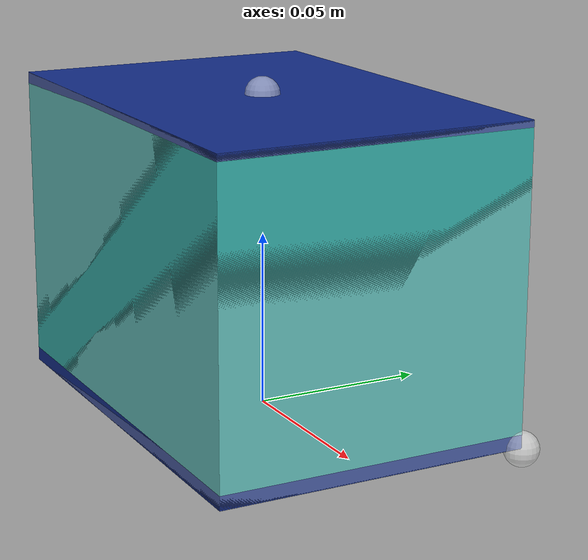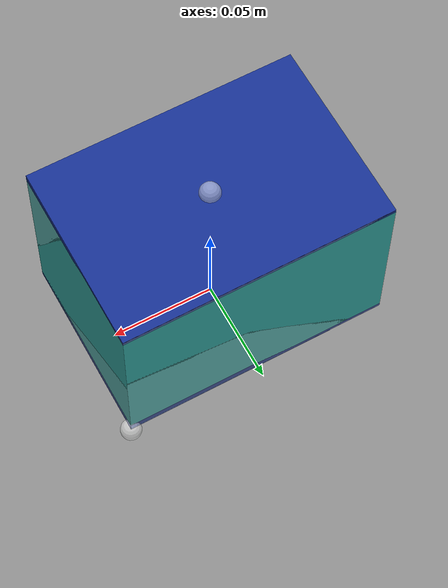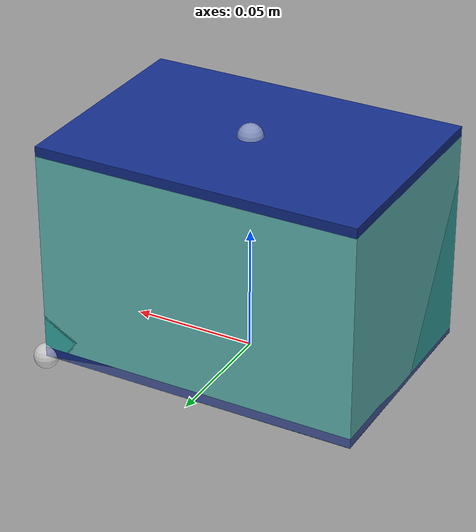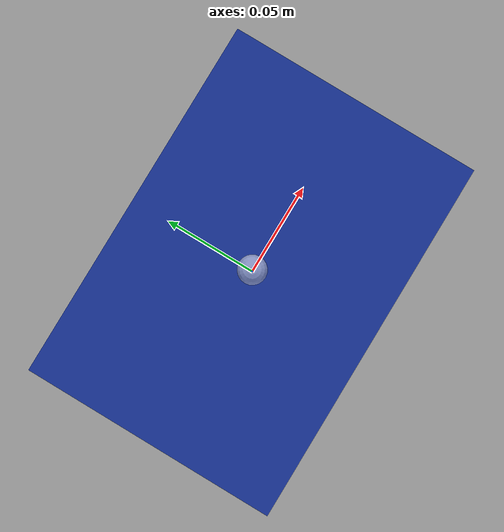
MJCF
<mujoco model="tp_link_box">
  <default>
    <default class="visual">
      <geom group="1" contype="0" conaffinity="0" density="0"/>
    </default>
    <default class="collision">
      <geom group="0" density="500" solimp="0.95 0.98 0.001" solref="0.004 1" rgba="1 1 1 0.25"/>
    </default>
    <default class="spawn">
      <geom group="1" rgba="1 1 1 0" contype="0" conaffinity="0" density="0" mass="0"/>
    </default>
  </default>
  <asset>
    <material name="teal_mat" rgba="0.22 0.70 0.68 1" specular="0.4" shininess="0.25"/>
    <material name="navy_mat" rgba="0.08 0.18 0.55 1" specular="0.5" shininess="0.3"/>
  </asset>
  <worldbody>
    <body>
      <body name="object">
        <!-- Box dims: 13 cm x 9 cm x 9 cm  (half-extents 0.065, 0.045, 0.045) -->
        <!-- Visual: teal main body + thin navy stripes at top and bottom (tp-link look) -->
        <geom class="visual" type="box" size="0.065 0.045 0.002" pos="0 0 0.002" material="navy_mat"/>
        <geom class="visual" type="box" size="0.065 0.045 0.043" pos="0 0 0.045" material="teal_mat"/>
        <geom class="visual" type="box" size="0.065 0.045 0.002" pos="0 0 0.088" material="navy_mat"/>
        <!-- Collision: single box covering full extent -->
        <geom class="collision" type="box" size="0.065 0.045 0.045" pos="0 0 0.045"/>
        <geom class="spawn" size="0.05 0.03 0.01" type="box" pos="0 0 0.09" name="spawn_top"/>
      </body>
      <site name="bottom_site" pos="0 0 0" rgba="1 1 1 0.5" size="0.005"/>
      <site name="top_site" pos="0 0 0.09" rgba="1 1 1 0.5" size="0.005"/>
      <site name="horizontal_radius_site" pos="0.065 0.045 0" rgba="1 1 1 0.5" size="0.005"/>
    </body>
  </worldbody>
</mujoco>
